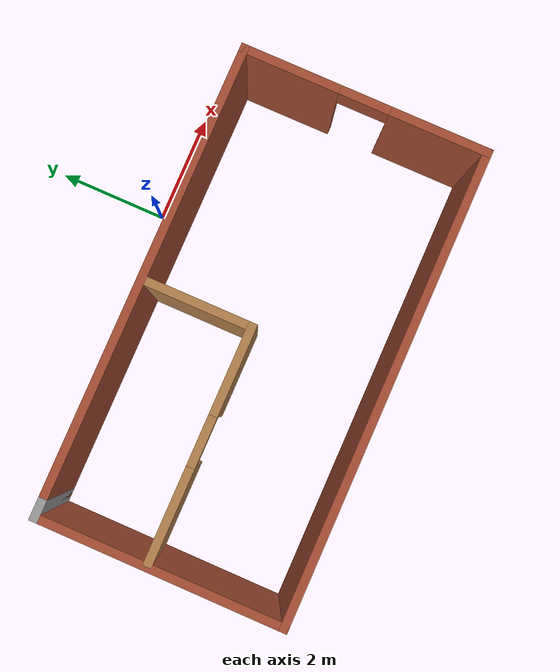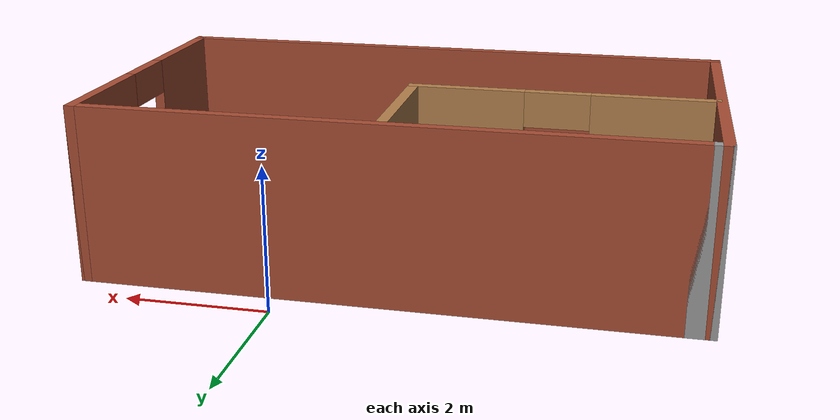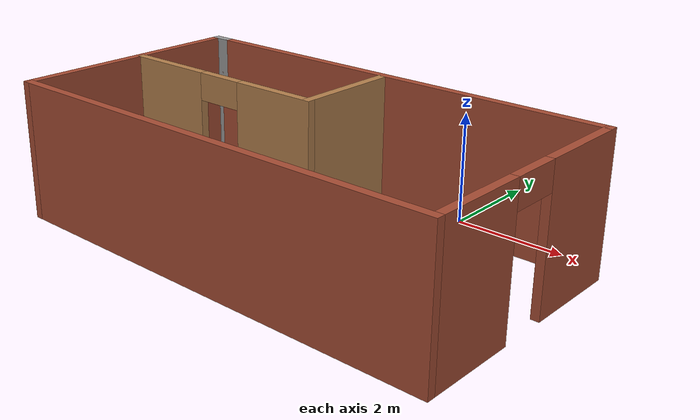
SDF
<?xml version='1.0'?>
<sdf version='1.7'>
  <model name='demoWorld'>
    <pose>-1.395 -2.4525 0 0 -0 0</pose>
    <link name='Wall_1'>
      <collision name='Wall_1_Collision'>
        <geometry>
          <box>
            <size>8.25 0.15 2.5</size>
          </box>
        </geometry>
        <pose>0 0 1.25 0 -0 0</pose>
      </collision>
      <visual name='Wall_1_Visual'>
        <pose>0 0 1.25 0 -0 0</pose>
        <geometry>
          <box>
            <size>8.25 0.15 2.5</size>
          </box>
        </geometry>
        <material>
          <script>
            <uri>file://media/materials/scripts/gazebo.material</uri>
            <name>Gazebo/Bricks</name>
          </script>
          <ambient>1 1 1 1</ambient>
        </material>
        <meta>
          <layer>0</layer>
        </meta>
      </visual>
      <pose>0.125 1.9725 0 0 -0 0</pose>
    </link>
    <link name='Wall_2'>
      <pose>4.175 -0.2025 0 0 -0 -1.5708</pose>
      <visual name='Wall_2_Visual_0'>
        <pose>-1.3525 0 1.25 0 -0 0</pose>
        <geometry>
          <box>
            <size>1.795 0.15 2.5</size>
          </box>
        </geometry>
        <material>
          <script>
            <uri>file://media/materials/scripts/gazebo.material</uri>
            <name>Gazebo/Bricks</name>
          </script>
          <ambient>1 1 1 1</ambient>
        </material>
        <meta>
          <layer>0</layer>
        </meta>
      </visual>
      <collision name='Wall_2_Collision_0'>
        <geometry>
          <box>
            <size>1.795 0.15 2.5</size>
          </box>
        </geometry>
        <pose>-1.3525 0 1.25 0 -0 0</pose>
      </collision>
      <visual name='Wall_2_Visual_1'>
        <pose>1.3475 0 1.25 0 -0 0</pose>
        <geometry>
          <box>
            <size>1.805 0.15 2.5</size>
          </box>
        </geometry>
        <material>
          <script>
            <uri>file://media/materials/scripts/gazebo.material</uri>
            <name>Gazebo/Bricks</name>
          </script>
          <ambient>1 1 1 1</ambient>
        </material>
        <meta>
          <layer>0</layer>
        </meta>
      </visual>
      <collision name='Wall_2_Collision_1'>
        <geometry>
          <box>
            <size>1.805 0.15 2.5</size>
          </box>
        </geometry>
        <pose>1.3475 0 1.25 0 -0 0</pose>
      </collision>
      <visual name='Wall_2_Visual_2'>
        <pose>-0.005 0 2.25 0 -0 0</pose>
        <geometry>
          <box>
            <size>0.9 0.15 0.5</size>
          </box>
        </geometry>
        <material>
          <script>
            <uri>file://media/materials/scripts/gazebo.material</uri>
            <name>Gazebo/Bricks</name>
          </script>
          <ambient>1 1 1 1</ambient>
        </material>
        <meta>
          <layer>0</layer>
        </meta>
      </visual>
      <collision name='Wall_2_Collision_2'>
        <geometry>
          <box>
            <size>0.9 0.15 0.5</size>
          </box>
        </geometry>
        <pose>-0.005 0 2.25 0 -0 0</pose>
      </collision>
    </link>
    <link name='Wall_3'>
      <collision name='Wall_3_Collision'>
        <geometry>
          <box>
            <size>8.5 0.15 2.5</size>
          </box>
        </geometry>
        <pose>0 0 1.25 0 -0 0</pose>
      </collision>
      <visual name='Wall_3_Visual'>
        <pose>0 0 1.25 0 -0 0</pose>
        <geometry>
          <box>
            <size>8.5 0.15 2.5</size>
          </box>
        </geometry>
        <material>
          <script>
            <uri>file://media/materials/scripts/gazebo.material</uri>
            <name>Gazebo/Bricks</name>
          </script>
          <ambient>1 1 1 1</ambient>
        </material>
        <meta>
          <layer>0</layer>
        </meta>
      </visual>
      <pose>0 -2.3775 0 0 -0 3.14159</pose>
    </link>
    <link name='Wall_4'>
      <collision name='Wall_4_Collision'>
        <geometry>
          <box>
            <size>4.5 0.15 2.5</size>
          </box>
        </geometry>
        <pose>0 0 1.25 0 -0 0</pose>
      </collision>
      <visual name='Wall_4_Visual'>
        <pose>0 0 1.25 0 -0 0</pose>
        <geometry>
          <box>
            <size>4.5 0.15 2.5</size>
          </box>
        </geometry>
        <material>
          <script>
            <uri>file://media/materials/scripts/gazebo.material</uri>
            <name>Gazebo/Bricks</name>
          </script>
          <ambient>1 1 1 1</ambient>
        </material>
        <meta>
          <layer>0</layer>
        </meta>
      </visual>
      <pose>-4.175 -0.2025 0 0 -0 1.5708</pose>
    </link>
    <link name='Wall_5'>
      <collision name='Wall_5_Collision'>
        <geometry>
          <box>
            <size>0.4 0.15 2.5</size>
          </box>
        </geometry>
        <pose>0 0 1.25 0 -0 0</pose>
      </collision>
      <visual name='Wall_5_Visual'>
        <pose>0 0 1.25 0 -0 0</pose>
        <geometry>
          <box>
            <size>0.4 0.15 2.5</size>
          </box>
        </geometry>
        <material>
          <script>
            <uri>file://media/materials/scripts/gazebo.material</uri>
            <name>Gazebo/Grey</name>
          </script>
          <ambient>1 1 1 1</ambient>
        </material>
        <meta>
          <layer>0</layer>
        </meta>
      </visual>
      <pose>-4.05 1.9725 0 0 -0 0</pose>
    </link>
    <link name='Wall_7'>
      <collision name='Wall_7_Collision'>
        <geometry>
          <box>
            <size>2 0.15 2.5</size>
          </box>
        </geometry>
        <pose>0 0 1.25 0 -0 0</pose>
      </collision>
      <visual name='Wall_7_Visual'>
        <pose>0 0 1.25 0 -0 0</pose>
        <geometry>
          <box>
            <size>2 0.15 2.5</size>
          </box>
        </geometry>
        <material>
          <script>
            <uri>file://media/materials/scripts/gazebo.material</uri>
            <name>Gazebo/Wood</name>
          </script>
          <ambient>1 1 1 1</ambient>
        </material>
        <meta>
          <layer>0</layer>
        </meta>
      </visual>
      <pose>0.005 0.9375 0 0 -0 -1.5708</pose>
    </link>
    <link name='Wall_8'>
      <pose>-2.045 0.0125 0 0 -0 3.14159</pose>
      <visual name='Wall_8_Visual_0'>
        <pose>-1.3075 0 1.25 0 -0 0</pose>
        <geometry>
          <box>
            <size>1.635 0.15 2.5</size>
          </box>
        </geometry>
        <material>
          <script>
            <uri>file://media/materials/scripts/gazebo.material</uri>
            <name>Gazebo/Wood</name>
          </script>
          <ambient>1 1 1 1</ambient>
        </material>
        <meta>
          <layer>0</layer>
        </meta>
      </visual>
      <collision name='Wall_8_Collision_0'>
        <geometry>
          <box>
            <size>1.635 0.15 2.5</size>
          </box>
        </geometry>
        <pose>-1.3075 0 1.25 0 -0 0</pose>
      </collision>
      <visual name='Wall_8_Visual_1'>
        <pose>1.2675 0 1.25 0 -0 0</pose>
        <geometry>
          <box>
            <size>1.715 0.15 2.5</size>
          </box>
        </geometry>
        <material>
          <script>
            <uri>file://media/materials/scripts/gazebo.material</uri>
            <name>Gazebo/Wood</name>
          </script>
          <ambient>1 1 1 1</ambient>
        </material>
        <meta>
          <layer>0</layer>
        </meta>
      </visual>
      <collision name='Wall_8_Collision_1'>
        <geometry>
          <box>
            <size>1.715 0.15 2.5</size>
          </box>
        </geometry>
        <pose>1.2675 0 1.25 0 -0 0</pose>
      </collision>
      <visual name='Wall_8_Visual_2'>
        <pose>-0.04 0 2.25 0 -0 0</pose>
        <geometry>
          <box>
            <size>0.9 0.15 0.5</size>
          </box>
        </geometry>
        <material>
          <script>
            <uri>file://media/materials/scripts/gazebo.material</uri>
            <name>Gazebo/Wood</name>
          </script>
          <ambient>1 1 1 1</ambient>
        </material>
        <meta>
          <layer>0</layer>
        </meta>
      </visual>
      <collision name='Wall_8_Collision_2'>
        <geometry>
          <box>
            <size>0.9 0.15 0.5</size>
          </box>
        </geometry>
        <pose>-0.04 0 2.25 0 -0 0</pose>
      </collision>
    </link>
    <static>1</static>
  </model>
</sdf>
